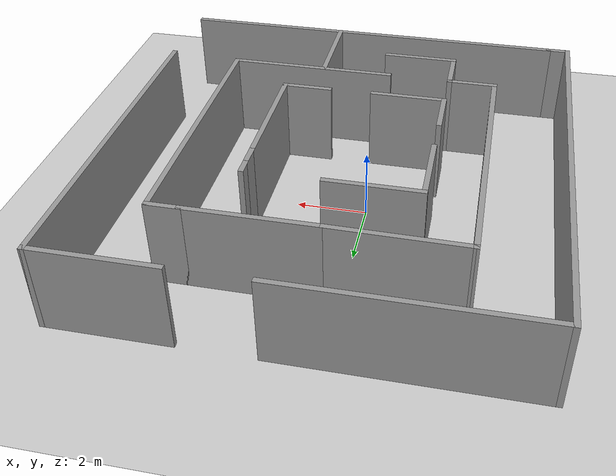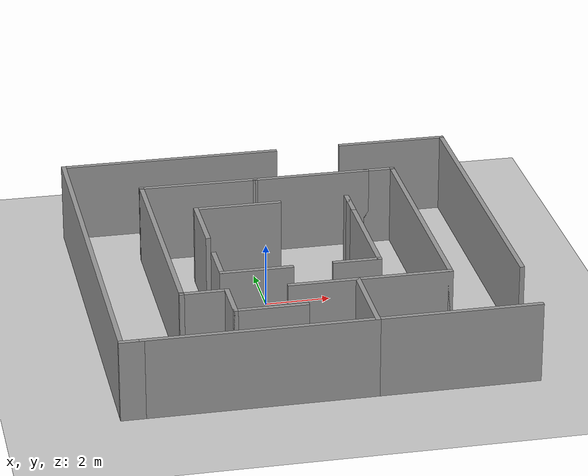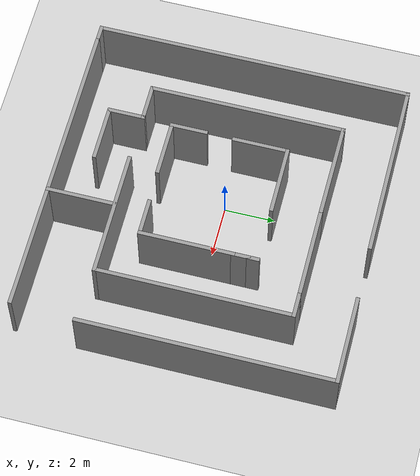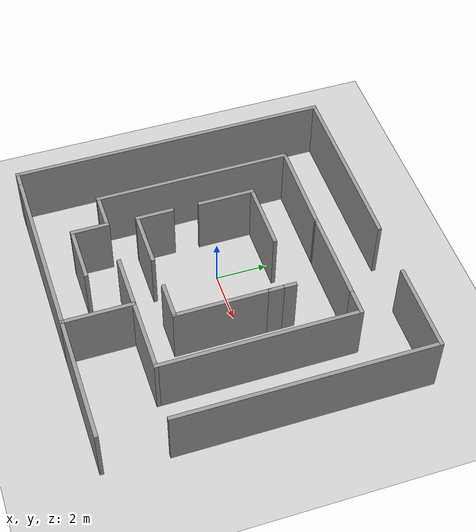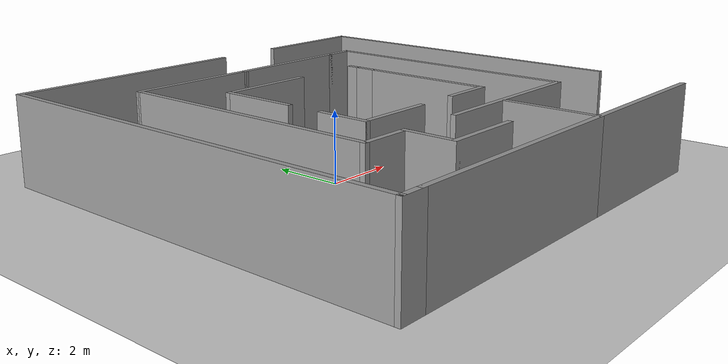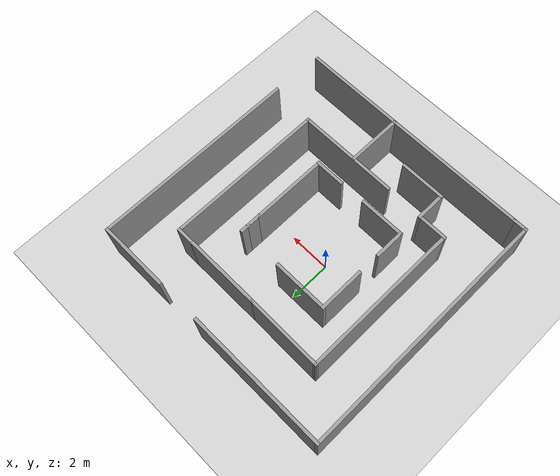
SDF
<sdf version="1.6">
 <world name="default">
  <light name="sun" type="directional">
   <pose>0 0 10 0 -0 0</pose>
   <diffuse>0.8 0.8 0.8 1</diffuse>
   <specular>0.2 0.2 0.2 1</specular>
   <attenuation>
    <range>1000</range>
    <constant>0.9</constant>
    <linear>0.01</linear>
    <quadratic>0.001</quadratic>
   </attenuation>
   <direction>-0.5 0.1 -0.9</direction>
  </light>
  <model name="ground_plane">
   <static>1</static>
   <link name="link">
    <collision name="collision">
     <geometry><plane><normal>0 0 1</normal><size>100 100</size></plane></geometry>
     <surface>
      <contact><collide_bitmask>65535</collide_bitmask></contact>
      <friction><ode><mu>100</mu><mu2>50</mu2></ode></friction>
     </surface>
    </collision>
    <visual name="visual">
     <cast_shadows>0</cast_shadows>
     <geometry><plane><normal>0 0 1</normal><size>100 100</size></plane></geometry>
     <material>
      <script><uri>file://media/materials/scripts/gazebo.material</uri><name>Gazebo/Grey</name></script>
     </material>
    </visual>
   </link>
  </model>
  <gravity>0 0 -9.8</gravity>
  <magnetic_field>6e-06 2.3e-05 -4.2e-05</magnetic_field>
  <atmosphere type="adiabatic"/>
  <physics name="default_physics" default="0" type="ode">
   <max_step_size>0.001</max_step_size>
   <real_time_factor>1</real_time_factor>
   <real_time_update_rate>1000</real_time_update_rate>
  </physics>
  <scene><ambient>0.4 0.4 0.4 1</ambient><background>0.7 0.7 0.7 1</background><shadows>1</shadows></scene>
  <spherical_coordinates>
   <surface_model>EARTH_WGS84</surface_model>
   <latitude_deg>0</latitude_deg>
   <longitude_deg>0</longitude_deg>
   <elevation>0</elevation>
   <heading_deg>0</heading_deg>
  </spherical_coordinates>
  <model name="migong">
   <pose>0.786083 -0.233166 0 0 -0 0</pose>
   <link name="Wall_10">
    <collision name="Wall_10_Collision">
     <geometry><box><size>1.5 0.15 2.5</size></box></geometry>
     <pose>0 0 1.25 0 -0 0</pose>
    </collision>
    <visual name="Wall_10_Visual">
     <pose>0 0 1.25 0 -0 0</pose>
     <geometry><box><size>1.5 0.15 2.5</size></box></geometry>
     <material>
      <script><uri>file://media/materials/scripts/gazebo.material</uri><name>Gazebo/Grey</name></script>
      <ambient>1 1 1 1</ambient>
     </material>
     <meta><layer>0</layer></meta>
    </visual>
    <pose>1.49872 -2.31588 0 0 -0 0</pose>
   </link>
   <link name="Wall_11">
    <collision name="Wall_11_Collision">
     <geometry><box><size>3.75 0.15 2.5</size></box></geometry>
     <pose>0 0 1.25 0 -0 0</pose>
    </collision>
    <visual name="Wall_11_Visual">
     <pose>0 0 1.25 0 -0 0</pose>
     <geometry><box><size>3.75 0.15 2.5</size></box></geometry>
     <material>
      <script><uri>file://media/materials/scripts/gazebo.material</uri><name>Gazebo/Grey</name></script>
      <ambient>1 1 1 1</ambient>
     </material>
     <meta><layer>0</layer></meta>
    </visual>
    <pose>2.17372 -0.515875 0 0 -0 1.5708</pose>
   </link>
   <link name="Wall_12">
    <collision name="Wall_12_Collision">
     <geometry><box><size>0.75 0.15 2.5</size></box></geometry>
     <pose>0 0 1.25 0 -0 0</pose>
    </collision>
    <visual name="Wall_12_Visual">
     <pose>0 0 1.25 0 -0 0</pose>
     <geometry><box><size>0.75 0.15 2.5</size></box></geometry>
     <material>
      <script><uri>file://media/materials/scripts/gazebo.material</uri><name>Gazebo/Grey</name></script>
      <ambient>1 1 1 1</ambient>
     </material>
     <meta><layer>0</layer></meta>
    </visual>
    <pose>2.17372 1.58413 0 0 -0 1.5708</pose>
   </link>
   <link name="Wall_13">
    <collision name="Wall_13_Collision">
     <geometry><box><size>0.5 0.15 2.5</size></box></geometry>
     <pose>0 0 1.25 0 -0 0</pose>
    </collision>
    <visual name="Wall_13_Visual">
     <pose>0 0 1.25 0 -0 0</pose>
     <geometry><box><size>0.5 0.15 2.5</size></box></geometry>
     <material>
      <script><uri>file://media/materials/scripts/gazebo.material</uri><name>Gazebo/Grey</name></script>
      <ambient>1 1 1 1</ambient>
     </material>
     <meta><layer>0</layer></meta>
    </visual>
    <pose>2.17372 2.05912 0 0 -0 1.5708</pose>
   </link>
   <link name="Wall_15">
    <collision name="Wall_15_Collision">
     <geometry><box><size>3.75 0.15 2.5</size></box></geometry>
     <pose>0 0 1.25 0 -0 0</pose>
    </collision>
    <visual name="Wall_15_Visual">
     <pose>0 0 1.25 0 -0 0</pose>
     <geometry><box><size>3.75 0.15 2.5</size></box></geometry>
     <material>
      <script><uri>file://media/materials/scripts/gazebo.material</uri><name>Gazebo/Grey</name></script>
      <ambient>1 1 1 1</ambient>
     </material>
     <meta><layer>0</layer></meta>
    </visual>
    <pose>1.40702 4.05858 0 0 -0 0</pose>
   </link>
   <link name="Wall_17">
    <collision name="Wall_17_Collision">
     <geometry><box><size>1 0.15 2.5</size></box></geometry>
     <pose>0 0 1.25 0 -0 0</pose>
    </collision>
    <visual name="Wall_17_Visual">
     <pose>0 0 1.25 0 -0 0</pose>
     <geometry><box><size>1 0.15 2.5</size></box></geometry>
     <material>
      <script><uri>file://media/materials/scripts/gazebo.material</uri><name>Gazebo/Grey</name></script>
      <ambient>1 1 1 1</ambient>
     </material>
     <meta><layer>0</layer></meta>
    </visual>
    <pose>3.63202 4.05858 0 0 -0 0</pose>
   </link>
   <link name="Wall_18">
    <collision name="Wall_18_Collision">
     <geometry><box><size>7.75 0.15 2.5</size></box></geometry>
     <pose>0 0 1.25 0 -0 0</pose>
    </collision>
    <visual name="Wall_18_Visual">
     <pose>0 0 1.25 0 -0 0</pose>
     <geometry><box><size>7.75 0.15 2.5</size></box></geometry>
     <material>
      <script><uri>file://media/materials/scripts/gazebo.material</uri><name>Gazebo/Grey</name></script>
      <ambient>1 1 1 1</ambient>
     </material>
     <meta><layer>0</layer></meta>
    </visual>
    <pose>4.05702 0.258575 0 0 -0 -1.5708</pose>
   </link>
   <link name="Wall_19">
    <collision name="Wall_19_Collision">
     <geometry><box><size>5 0.15 2.5</size></box></geometry>
     <pose>0 0 1.25 0 -0 0</pose>
    </collision>
    <visual name="Wall_19_Visual">
     <pose>0 0 1.25 0 -0 0</pose>
     <geometry><box><size>5 0.15 2.5</size></box></geometry>
     <material>
      <script><uri>file://media/materials/scripts/gazebo.material</uri><name>Gazebo/Grey</name></script>
      <ambient>1 1 1 1</ambient>
     </material>
     <meta><layer>0</layer></meta>
    </visual>
    <pose>1.63202 -3.54142 0 0 -0 3.14159</pose>
   </link>
   <link name="Wall_21">
    <collision name="Wall_21_Collision">
     <geometry><box><size>1.5 0.15 2.5</size></box></geometry>
     <pose>0 0 1.25 0 -0 0</pose>
    </collision>
    <visual name="Wall_21_Visual">
     <pose>0 0 1.25 0 -0 0</pose>
     <geometry><box><size>1.5 0.15 2.5</size></box></geometry>
     <material>
      <script><uri>file://media/materials/scripts/gazebo.material</uri><name>Gazebo/Grey</name></script>
      <ambient>1 1 1 1</ambient>
     </material>
     <meta><layer>0</layer></meta>
    </visual>
    <pose>-3.34268 -3.50612 0 0 -0 3.14159</pose>
   </link>
   <link name="Wall_22">
    <collision name="Wall_22_Collision">
     <geometry><box><size>7.75 0.15 2.5</size></box></geometry>
     <pose>0 0 1.25 0 -0 0</pose>
    </collision>
    <visual name="Wall_22_Visual">
     <pose>0 0 1.25 0 -0 0</pose>
     <geometry><box><size>7.75 0.15 2.5</size></box></geometry>
     <material>
      <script><uri>file://media/materials/scripts/gazebo.material</uri><name>Gazebo/Grey</name></script>
      <ambient>1 1 1 1</ambient>
     </material>
     <meta><layer>0</layer></meta>
    </visual>
    <pose>-4.01768 0.293875 0 0 -0 1.5708</pose>
   </link>
   <link name="Wall_23">
    <collision name="Wall_23_Collision">
     <geometry><box><size>3.77487 0.15 2.5</size></box></geometry>
     <pose>0 0 1.25 0 -0 0</pose>
    </collision>
    <visual name="Wall_23_Visual">
     <pose>0 0 1.25 0 -0 0</pose>
     <geometry><box><size>3.77487 0.15 2.5</size></box></geometry>
     <material>
      <script><uri>file://media/materials/scripts/gazebo.material</uri><name>Gazebo/Grey</name></script>
      <ambient>1 1 1 1</ambient>
     </material>
     <meta><layer>0</layer></meta>
    </visual>
    <pose>-2.20533 4.07623 0 0 -0 -0.009738</pose>
   </link>
   <link name="Wall_26">
    <collision name="Wall_26_Collision">
     <geometry><box><size>1.5 0.15 2.5</size></box></geometry>
     <pose>0 0 1.25 0 -0 0</pose>
    </collision>
    <visual name="Wall_26_Visual">
     <pose>0 0 1.25 0 -0 0</pose>
     <geometry><box><size>1.5 0.15 2.5</size></box></geometry>
     <material>
      <script><uri>file://media/materials/scripts/gazebo.material</uri><name>Gazebo/Grey</name></script>
      <ambient>1 1 1 1</ambient>
     </material>
     <meta><layer>0</layer></meta>
    </visual>
    <pose>-2.66768 -4.18112 0 0 -0 -1.5708</pose>
   </link>
   <link name="Wall_27">
    <collision name="Wall_27_Collision">
     <geometry><box><size>2.25 0.15 2.5</size></box></geometry>
     <pose>0 0 1.25 0 -0 0</pose>
    </collision>
    <visual name="Wall_27_Visual">
     <pose>0 0 1.25 0 -0 0</pose>
     <geometry><box><size>2.25 0.15 2.5</size></box></geometry>
     <material>
      <script><uri>file://media/materials/scripts/gazebo.material</uri><name>Gazebo/Grey</name></script>
      <ambient>1 1 1 1</ambient>
     </material>
     <meta><layer>0</layer></meta>
    </visual>
    <pose>-1.61768 -4.85612 0 0 -0 0</pose>
   </link>
   <link name="Wall_29">
    <collision name="Wall_29_Collision">
     <geometry><box><size>2.75 0.15 2.5</size></box></geometry>
     <pose>0 0 1.25 0 -0 0</pose>
    </collision>
    <visual name="Wall_29_Visual">
     <pose>0 0 1.25 0 -0 0</pose>
     <geometry><box><size>2.75 0.15 2.5</size></box></geometry>
     <material>
      <script><uri>file://media/materials/scripts/gazebo.material</uri><name>Gazebo/Grey</name></script>
      <ambient>1 1 1 1</ambient>
     </material>
     <meta><layer>0</layer></meta>
    </visual>
    <pose>1.24546 -4.87973 0 0 -0 -1.5708</pose>
   </link>
   <link name="Wall_30">
    <collision name="Wall_30_Collision">
     <geometry><box><size>7 0.15 2.5</size></box></geometry>
     <pose>0 0 1.25 0 -0 0</pose>
    </collision>
    <visual name="Wall_30_Visual">
     <pose>0 0 1.25 0 -0 0</pose>
     <geometry><box><size>7 0.15 2.5</size></box></geometry>
     <material>
      <script><uri>file://media/materials/scripts/gazebo.material</uri><name>Gazebo/Grey</name></script>
      <ambient>1 1 1 1</ambient>
     </material>
     <meta><layer>0</layer></meta>
    </visual>
    <pose>-2.17954 -6.17973 0 0 -0 3.14159</pose>
   </link>
   <link name="Wall_31">
    <collision name="Wall_31_Collision">
     <geometry><box><size>0.75 0.15 2.5</size></box></geometry>
     <pose>0 0 1.25 0 -0 0</pose>
    </collision>
    <visual name="Wall_31_Visual">
     <pose>0 0 1.25 0 -0 0</pose>
     <geometry><box><size>0.75 0.15 2.5</size></box></geometry>
     <material>
      <script><uri>file://media/materials/scripts/gazebo.material</uri><name>Gazebo/Grey</name></script>
      <ambient>1 1 1 1</ambient>
     </material>
     <meta><layer>0</layer></meta>
    </visual>
    <pose>-5.90454 -6.17973 0 0 -0 3.14159</pose>
   </link>
   <link name="Wall_32">
    <collision name="Wall_32_Collision">
     <geometry><box><size>12.5 0.15 2.5</size></box></geometry>
     <pose>0 0 1.25 0 -0 0</pose>
    </collision>
    <visual name="Wall_32_Visual">
     <pose>0 0 1.25 0 -0 0</pose>
     <geometry><box><size>12.5 0.15 2.5</size></box></geometry>
     <material>
      <script><uri>file://media/materials/scripts/gazebo.material</uri><name>Gazebo/Grey</name></script>
      <ambient>1 1 1 1</ambient>
     </material>
     <meta><layer>0</layer></meta>
    </visual>
    <pose>-6.20454 -0.004727 0 0 -0 1.5708</pose>
   </link>
   <link name="Wall_33">
    <collision name="Wall_33_Collision">
     <geometry><box><size>7 0.15 2.5</size></box></geometry>
     <pose>0 0 1.25 0 -0 0</pose>
    </collision>
    <visual name="Wall_33_Visual">
     <pose>0 0 1.25 0 -0 0</pose>
     <geometry><box><size>7 0.15 2.5</size></box></geometry>
     <material>
      <script><uri>file://media/materials/scripts/gazebo.material</uri><name>Gazebo/Grey</name></script>
      <ambient>1 1 1 1</ambient>
     </material>
     <meta><layer>0</layer></meta>
    </visual>
    <pose>-2.77954 6.17027 0 0 -0 0</pose>
   </link>
   <link name="Wall_35">
    <collision name="Wall_35_Collision">
     <geometry><box><size>3.5 0.15 2.5</size></box></geometry>
     <pose>0 0 1.25 0 -0 0</pose>
    </collision>
    <visual name="Wall_35_Visual">
     <pose>0 0 1.25 0 -0 0</pose>
     <geometry><box><size>3.5 0.15 2.5</size></box></geometry>
     <material>
      <script><uri>file://media/materials/scripts/gazebo.material</uri><name>Gazebo/Grey</name></script>
      <ambient>1 1 1 1</ambient>
     </material>
     <meta><layer>0</layer></meta>
    </visual>
    <pose>4.52954 6.17973 0 0 -0 0</pose>
   </link>
   <link name="Wall_36">
    <collision name="Wall_36_Collision">
     <geometry><box><size>10 0.15 2.5</size></box></geometry>
     <pose>0 0 1.25 0 -0 0</pose>
    </collision>
    <visual name="Wall_36_Visual">
     <pose>0 0 1.25 0 -0 0</pose>
     <geometry><box><size>10 0.15 2.5</size></box></geometry>
     <material>
      <script><uri>file://media/materials/scripts/gazebo.material</uri><name>Gazebo/Grey</name></script>
      <ambient>1 1 1 1</ambient>
     </material>
     <meta><layer>0</layer></meta>
    </visual>
    <pose>6.20454 1.25473 0 0 -0 -1.5708</pose>
   </link>
   <link name="Wall_38">
    <collision name="Wall_38_Collision">
     <geometry><box><size>5 0.15 2.5</size></box></geometry>
     <pose>0 0 1.25 0 -0 0</pose>
    </collision>
    <visual name="Wall_38_Visual">
     <pose>0 0 1.25 0 -0 0</pose>
     <geometry><box><size>5 0.15 2.5</size></box></geometry>
     <material>
      <script><uri>file://media/materials/scripts/gazebo.material</uri><name>Gazebo/Grey</name></script>
      <ambient>1 1 1 1</ambient>
     </material>
     <meta><layer>0</layer></meta>
    </visual>
    <pose>3.67046 -6.17973 0 0 -0 0</pose>
   </link>
   <link name="Wall_4">
    <collision name="Wall_4_Collision">
     <geometry><box><size>2.75 0.15 2.5</size></box></geometry>
     <pose>0 0 1.25 0 -0 0</pose>
    </collision>
    <visual name="Wall_4_Visual">
     <pose>0 0 1.25 0 -0 0</pose>
     <geometry><box><size>2.75 0.15 2.5</size></box></geometry>
     <material>
      <script><uri>file://media/materials/scripts/gazebo.material</uri><name>Gazebo/Grey</name></script>
      <ambient>1 1 1 1</ambient>
     </material>
     <meta><layer>0</layer></meta>
    </visual>
    <pose>-1.29623 2.23353 0 0 -0 3.14159</pose>
   </link>
   <link name="Wall_5">
    <collision name="Wall_5_Collision">
     <geometry><box><size>2.25 0.15 2.5</size></box></geometry>
     <pose>0 0 1.25 0 -0 0</pose>
    </collision>
    <visual name="Wall_5_Visual">
     <pose>0 0 1.25 0 -0 0</pose>
     <geometry><box><size>2.25 0.15 2.5</size></box></geometry>
     <material>
      <script><uri>file://media/materials/scripts/gazebo.material</uri><name>Gazebo/Grey</name></script>
      <ambient>1 1 1 1</ambient>
     </material>
     <meta><layer>0</layer></meta>
    </visual>
    <pose>-2.59623 1.18352 0 0 -0 -1.5708</pose>
   </link>
   <link name="Wall_7">
    <collision name="Wall_7_Collision">
     <geometry><box><size>1.5 0.15 2.5</size></box></geometry>
     <pose>0 0 1.25 0 -0 0</pose>
    </collision>
    <visual name="Wall_7_Visual">
     <pose>0 0 1.25 0 -0 0</pose>
     <geometry><box><size>1.5 0.15 2.5</size></box></geometry>
     <material>
      <script><uri>file://media/materials/scripts/gazebo.material</uri><name>Gazebo/Grey</name></script>
      <ambient>1 1 1 1</ambient>
     </material>
     <meta><layer>0</layer></meta>
    </visual>
    <pose>-2.61478 -1.66837 0 0 -0 -1.5708</pose>
   </link>
   <link name="Wall_8">
    <collision name="Wall_8_Collision">
     <geometry><box><size>2.25 0.15 2.5</size></box></geometry>
     <pose>0 0 1.25 0 -0 0</pose>
    </collision>
    <visual name="Wall_8_Visual">
     <pose>0 0 1.25 0 -0 0</pose>
     <geometry><box><size>2.25 0.15 2.5</size></box></geometry>
     <material>
      <script><uri>file://media/materials/scripts/gazebo.material</uri><name>Gazebo/Grey</name></script>
      <ambient>1 1 1 1</ambient>
     </material>
     <meta><layer>0</layer></meta>
    </visual>
    <pose>-1.56478 -2.34337 0 0 -0 0</pose>
   </link>
   <static>1</static>
  </model>
 </world>
</sdf>
